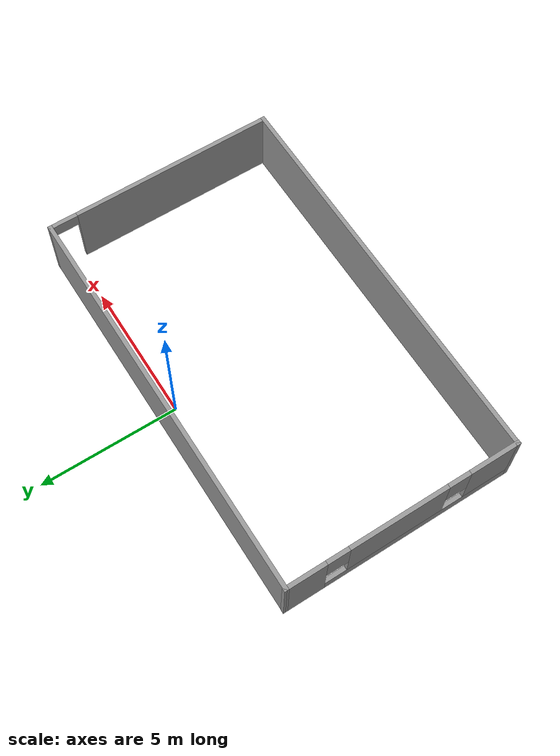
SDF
<?xml version='1.0'?>
<sdf version='1.6'>
  <model name='myroom'>
    <pose frame=''>-0.344925 -3.58 0 0 -0 0</pose>
    <link name='Wall_1'>
      <collision name='Wall_1_Collision'>
        <geometry>
          <box>
            <size>14.4903 0.15 2.5</size>
          </box>
        </geometry>
        <pose frame=''>0 0 1.25 0 -0 0</pose>
      </collision>
      <visual name='Wall_1_Visual'>
        <pose frame=''>0 0 1.25 0 -0 0</pose>
        <geometry>
          <box>
            <size>14.4903 0.15 2.5</size>
          </box>
        </geometry>
        <material>
          <script>
            <uri>file://media/materials/scripts/gazebo.material</uri>
            <name>Gazebo/Grey</name>
          </script>
          <ambient>1 1 1 1</ambient>
        </material>
      </visual>
      <pose frame=''>0.004925 -4.17 0 0 -0 0.001395</pose>
    </link>
    <link name='Wall_2'>
      <pose frame=''>7.17492 0.01 0 0 -0 1.5708</pose>
      <visual name='Wall_2_Visual_0'>
        <pose frame=''>-0.5275 0 1.25 0 -0 0</pose>
        <geometry>
          <box>
            <size>7.435 0.15 2.5</size>
          </box>
        </geometry>
        <material>
          <script>
            <uri>file://media/materials/scripts/gazebo.material</uri>
            <name>Gazebo/Grey</name>
          </script>
          <ambient>1 1 1 1</ambient>
        </material>
      </visual>
      <collision name='Wall_2_Collision_0'>
        <geometry>
          <box>
            <size>7.435 0.15 2.5</size>
          </box>
        </geometry>
        <pose frame=''>-0.5275 0 1.25 0 -0 0</pose>
      </collision>
      <visual name='Wall_2_Visual_1'>
        <pose frame=''>4.1675 0 1.25 0 -0 0</pose>
        <geometry>
          <box>
            <size>0.155 0.15 2.5</size>
          </box>
        </geometry>
        <material>
          <script>
            <uri>file://media/materials/scripts/gazebo.material</uri>
            <name>Gazebo/Grey</name>
          </script>
          <ambient>1 1 1 1</ambient>
        </material>
      </visual>
      <collision name='Wall_2_Collision_1'>
        <geometry>
          <box>
            <size>0.155 0.15 2.5</size>
          </box>
        </geometry>
        <pose frame=''>4.1675 0 1.25 0 -0 0</pose>
      </collision>
      <visual name='Wall_2_Visual_2'>
        <pose frame=''>3.64 0 2.25 0 -0 0</pose>
        <geometry>
          <box>
            <size>0.9 0.15 0.5</size>
          </box>
        </geometry>
        <material>
          <script>
            <uri>file://media/materials/scripts/gazebo.material</uri>
            <name>Gazebo/Grey</name>
          </script>
          <ambient>1 1 1 1</ambient>
        </material>
      </visual>
      <collision name='Wall_2_Collision_2'>
        <geometry>
          <box>
            <size>0.9 0.15 0.5</size>
          </box>
        </geometry>
        <pose frame=''>3.64 0 2.25 0 -0 0</pose>
      </collision>
    </link>
    <link name='Wall_3'>
      <collision name='Wall_3_Collision'>
        <geometry>
          <box>
            <size>14.5 0.15 2.5</size>
          </box>
        </geometry>
        <pose frame=''>0 0 1.25 0 -0 0</pose>
      </collision>
      <visual name='Wall_3_Visual'>
        <pose frame=''>0 0 1.25 0 -0 0</pose>
        <geometry>
          <box>
            <size>14.5 0.15 2.5</size>
          </box>
        </geometry>
        <material>
          <script>
            <uri>file://media/materials/scripts/gazebo.material</uri>
            <name>Gazebo/Grey</name>
          </script>
          <ambient>1 1 1 1</ambient>
        </material>
      </visual>
      <pose frame=''>-7.5e-05 4.18 0 0 -0 3.14159</pose>
    </link>
    <link name='Wall_4'>
      <pose frame=''>-7.17007 0 0 0 0 -1.5696</pose>
      <visual name='Wall_4_Visual_0'>
        <pose frame=''>-3.51752 0 1.25 0 -0 0</pose>
        <geometry>
          <box>
            <size>1.49497 0.15 2.5</size>
          </box>
        </geometry>
        <material>
          <script>
            <uri>file://media/materials/scripts/gazebo.material</uri>
            <name>Gazebo/Grey</name>
          </script>
          <ambient>1 1 1 1</ambient>
        </material>
      </visual>
      <collision name='Wall_4_Collision_0'>
        <geometry>
          <box>
            <size>1.49497 0.15 2.5</size>
          </box>
        </geometry>
        <pose frame=''>-3.51752 0 1.25 0 -0 0</pose>
      </collision>
      <visual name='Wall_4_Visual_1'>
        <pose frame=''>0.747487 0 0.25 0 -0 0</pose>
        <geometry>
          <box>
            <size>7.03503 0.15 0.5</size>
          </box>
        </geometry>
        <material>
          <script>
            <uri>file://media/materials/scripts/gazebo.material</uri>
            <name>Gazebo/Grey</name>
          </script>
          <ambient>1 1 1 1</ambient>
        </material>
      </visual>
      <collision name='Wall_4_Collision_1'>
        <geometry>
          <box>
            <size>7.03503 0.15 0.5</size>
          </box>
        </geometry>
        <pose frame=''>0.747487 0 0.25 0 -0 0</pose>
      </collision>
      <visual name='Wall_4_Visual_2'>
        <pose frame=''>-0.184982 0 1.5 0 -0 0</pose>
        <geometry>
          <box>
            <size>3.57009 0.15 2</size>
          </box>
        </geometry>
        <material>
          <script>
            <uri>file://media/materials/scripts/gazebo.material</uri>
            <name>Gazebo/Grey</name>
          </script>
          <ambient>1 1 1 1</ambient>
        </material>
      </visual>
      <collision name='Wall_4_Collision_2'>
        <geometry>
          <box>
            <size>3.57009 0.15 2</size>
          </box>
        </geometry>
        <pose frame=''>-0.184982 0 1.5 0 -0 0</pose>
      </collision>
      <visual name='Wall_4_Visual_3'>
        <pose frame=''>3.33253 0 1.5 0 -0 0</pose>
        <geometry>
          <box>
            <size>1.86494 0.15 2</size>
          </box>
        </geometry>
        <material>
          <script>
            <uri>file://media/materials/scripts/gazebo.material</uri>
            <name>Gazebo/Grey</name>
          </script>
          <ambient>1 1 1 1</ambient>
        </material>
      </visual>
      <collision name='Wall_4_Collision_3'>
        <geometry>
          <box>
            <size>1.86494 0.15 2</size>
          </box>
        </geometry>
        <pose frame=''>3.33253 0 1.5 0 -0 0</pose>
      </collision>
      <visual name='Wall_4_Visual_4'>
        <pose frame=''>-2.37003 0 1.9 0 -0 0</pose>
        <geometry>
          <box>
            <size>0.8 0.15 1.2</size>
          </box>
        </geometry>
        <material>
          <script>
            <uri>file://media/materials/scripts/gazebo.material</uri>
            <name>Gazebo/Grey</name>
          </script>
          <ambient>1 1 1 1</ambient>
        </material>
      </visual>
      <collision name='Wall_4_Collision_4'>
        <geometry>
          <box>
            <size>0.8 0.15 1.2</size>
          </box>
        </geometry>
        <pose frame=''>-2.37003 0 1.9 0 -0 0</pose>
      </collision>
      <visual name='Wall_4_Visual_5'>
        <pose frame=''>2.00006 0 1.9 0 -0 0</pose>
        <geometry>
          <box>
            <size>0.8 0.15 1.2</size>
          </box>
        </geometry>
        <material>
          <script>
            <uri>file://media/materials/scripts/gazebo.material</uri>
            <name>Gazebo/Grey</name>
          </script>
          <ambient>1 1 1 1</ambient>
        </material>
      </visual>
      <collision name='Wall_4_Collision_5'>
        <geometry>
          <box>
            <size>0.8 0.15 1.2</size>
          </box>
        </geometry>
        <pose frame=''>2.00006 0 1.9 0 -0 0</pose>
      </collision>
    </link>
    <static>1</static>
  </model>
</sdf>
